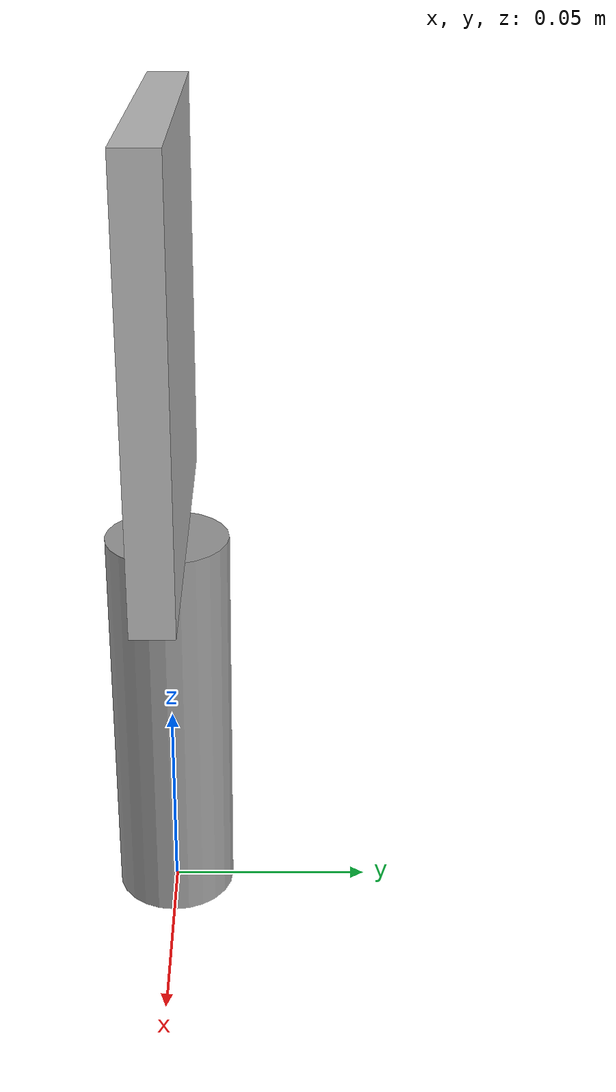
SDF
<?xml version="1.0"?>
<sdf version="1.6">
  <model name="sign_no_entry">

    <static>true</static>

    <link name="link">

      <visual name="post_visual">
        <pose>0 0 0.05 0 0 0</pose>
        <geometry>
          <cylinder><radius>0.015</radius><length>0.1</length></cylinder>
        </geometry>
        <material>
          <ambient>0.5 0.5 0.5 1</ambient>
          <diffuse>0.6 0.6 0.6 1</diffuse>
        </material>
      </visual>

      <collision name="post_collision">
        <pose>0 0 0.05 0 0 0</pose>
        <geometry>
          <cylinder><radius>0.015</radius><length>0.1</length></cylinder>
        </geometry>
      </collision>

      <visual name="sign_visual">
        <pose>0 0 0.15 0 0 0</pose>
        <geometry>
          <box><size>0.10 0.01 0.10</size></box>
        </geometry>
        <material>
          <script>
            <uri>model://sign_no_entry/materials/scripts</uri>
            <uri>model://sign_no_entry/materials/textures</uri>
            <name>sign_no_entry/Diffuse</name>
          </script>
        </material>
      </visual>

      <inertial>
        <mass>0.5</mass>
        <inertia>
          <ixx>0.01</ixx><ixy>0</ixy><ixz>0</ixz>
          <iyy>0.01</iyy><iyz>0</iyz>
          <izz>0.01</izz>
        </inertia>
      </inertial>

    </link>
  </model>
</sdf>
